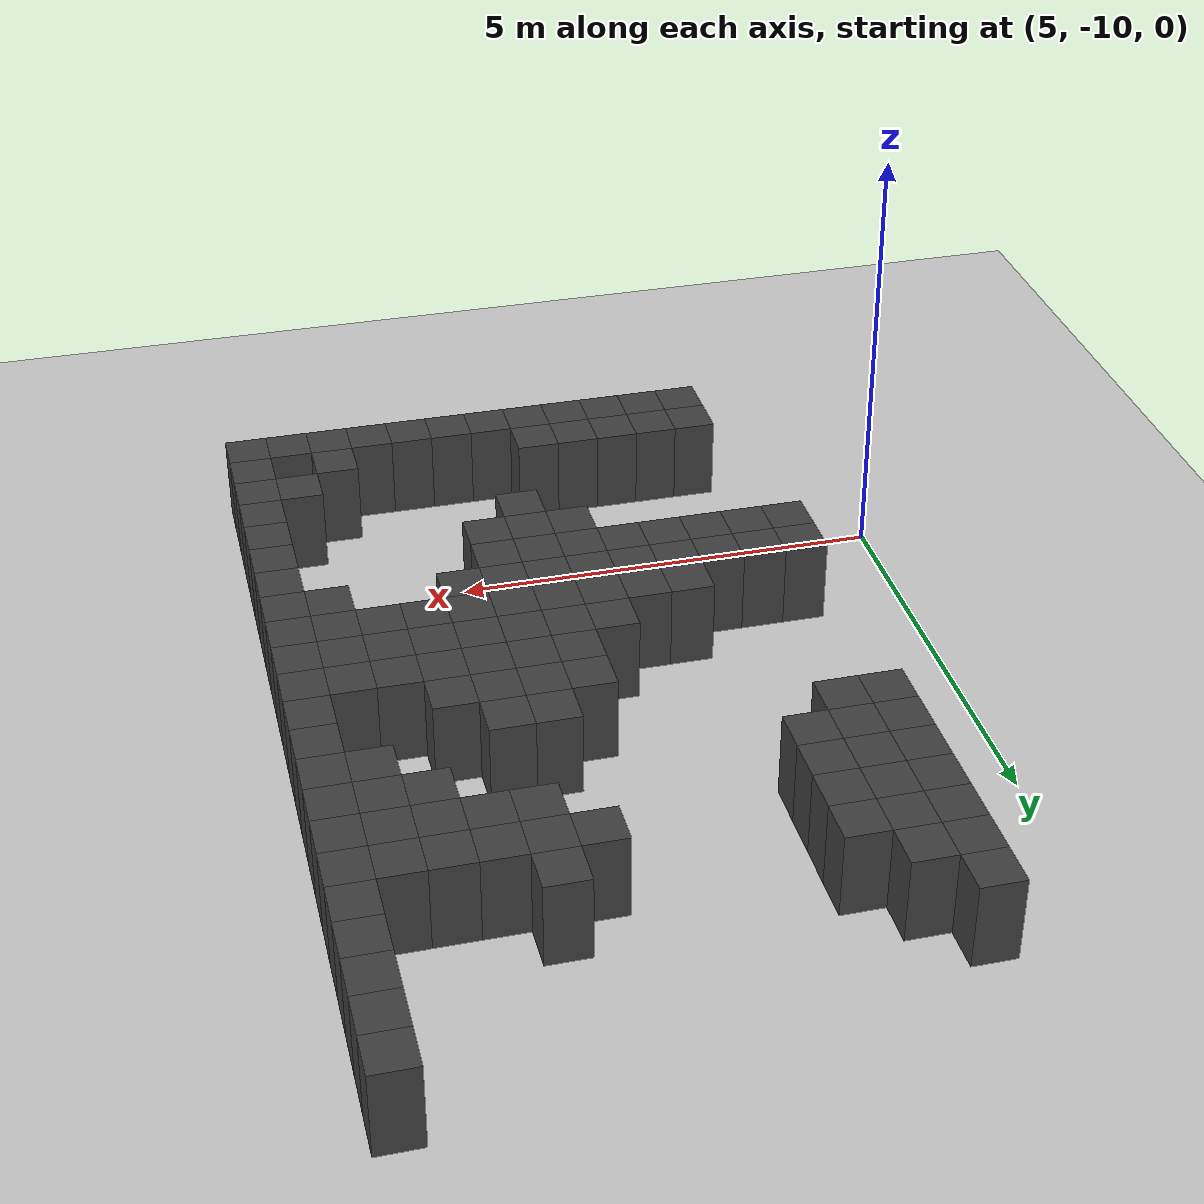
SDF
<sdf version="1.7">
 <world name="map_9381">
  <model name="ground_plane">
   <static>true</static>
   <link name="link">
    <collision name="collision">
     <geometry><plane><normal>0 0 1</normal><size>200 200</size></plane></geometry>
    </collision>
    <visual name="visual">
     <geometry><plane><normal>0 0 1</normal><size>200 200</size></plane></geometry>
     <material><ambient>0.8 0.8 0.8 1</ambient><diffuse>0.8 0.8 0.8 1</diffuse></material>
    </visual>
   </link>
  </model>
  <model name="maze_environment">
   <static>true</static>
   <link name="wall_439">
    <pose>12.250 -1.750 0.500 0 0 0</pose>
    <collision name="col"><geometry><box><size>0.5 0.5 1.0</size></box></geometry></collision>
    <visual name="vis">
     <geometry><box><size>0.5 0.5 1.0</size></box></geometry>
     <material><ambient>0.15 0.15 0.15 1</ambient><diffuse>0.25 0.25 0.25 1</diffuse></material>
    </visual>
   </link>
   <link name="wall_455">
    <pose>12.250 -2.250 0.500 0 0 0</pose>
    <collision name="col"><geometry><box><size>0.5 0.5 1.0</size></box></geometry></collision>
    <visual name="vis">
     <geometry><box><size>0.5 0.5 1.0</size></box></geometry>
     <material><ambient>0.15 0.15 0.15 1</ambient><diffuse>0.25 0.25 0.25 1</diffuse></material>
    </visual>
   </link>
   <link name="wall_470">
    <pose>6.250 -2.750 0.500 0 0 0</pose>
    <collision name="col"><geometry><box><size>0.5 0.5 1.0</size></box></geometry></collision>
    <visual name="vis">
     <geometry><box><size>0.5 0.5 1.0</size></box></geometry>
     <material><ambient>0.15 0.15 0.15 1</ambient><diffuse>0.25 0.25 0.25 1</diffuse></material>
    </visual>
   </link>
   <link name="wall_471">
    <pose>12.250 -2.750 0.500 0 0 0</pose>
    <collision name="col"><geometry><box><size>0.5 0.5 1.0</size></box></geometry></collision>
    <visual name="vis">
     <geometry><box><size>0.5 0.5 1.0</size></box></geometry>
     <material><ambient>0.15 0.15 0.15 1</ambient><diffuse>0.25 0.25 0.25 1</diffuse></material>
    </visual>
   </link>
   <link name="wall_483">
    <pose>6.250 -3.250 0.500 0 0 0</pose>
    <collision name="col"><geometry><box><size>0.5 0.5 1.0</size></box></geometry></collision>
    <visual name="vis">
     <geometry><box><size>0.5 0.5 1.0</size></box></geometry>
     <material><ambient>0.15 0.15 0.15 1</ambient><diffuse>0.25 0.25 0.25 1</diffuse></material>
    </visual>
   </link>
   <link name="wall_484">
    <pose>6.750 -3.250 0.500 0 0 0</pose>
    <collision name="col"><geometry><box><size>0.5 0.5 1.0</size></box></geometry></collision>
    <visual name="vis">
     <geometry><box><size>0.5 0.5 1.0</size></box></geometry>
     <material><ambient>0.15 0.15 0.15 1</ambient><diffuse>0.25 0.25 0.25 1</diffuse></material>
    </visual>
   </link>
   <link name="wall_485">
    <pose>12.250 -3.250 0.500 0 0 0</pose>
    <collision name="col"><geometry><box><size>0.5 0.5 1.0</size></box></geometry></collision>
    <visual name="vis">
     <geometry><box><size>0.5 0.5 1.0</size></box></geometry>
     <material><ambient>0.15 0.15 0.15 1</ambient><diffuse>0.25 0.25 0.25 1</diffuse></material>
    </visual>
   </link>
   <link name="wall_497">
    <pose>6.250 -3.750 0.500 0 0 0</pose>
    <collision name="col"><geometry><box><size>0.5 0.5 1.0</size></box></geometry></collision>
    <visual name="vis">
     <geometry><box><size>0.5 0.5 1.0</size></box></geometry>
     <material><ambient>0.15 0.15 0.15 1</ambient><diffuse>0.25 0.25 0.25 1</diffuse></material>
    </visual>
   </link>
   <link name="wall_498">
    <pose>6.750 -3.750 0.500 0 0 0</pose>
    <collision name="col"><geometry><box><size>0.5 0.5 1.0</size></box></geometry></collision>
    <visual name="vis">
     <geometry><box><size>0.5 0.5 1.0</size></box></geometry>
     <material><ambient>0.15 0.15 0.15 1</ambient><diffuse>0.25 0.25 0.25 1</diffuse></material>
    </visual>
   </link>
   <link name="wall_499">
    <pose>7.250 -3.750 0.500 0 0 0</pose>
    <collision name="col"><geometry><box><size>0.5 0.5 1.0</size></box></geometry></collision>
    <visual name="vis">
     <geometry><box><size>0.5 0.5 1.0</size></box></geometry>
     <material><ambient>0.15 0.15 0.15 1</ambient><diffuse>0.25 0.25 0.25 1</diffuse></material>
    </visual>
   </link>
   <link name="wall_500">
    <pose>10.250 -3.750 0.500 0 0 0</pose>
    <collision name="col"><geometry><box><size>0.5 0.5 1.0</size></box></geometry></collision>
    <visual name="vis">
     <geometry><box><size>0.5 0.5 1.0</size></box></geometry>
     <material><ambient>0.15 0.15 0.15 1</ambient><diffuse>0.25 0.25 0.25 1</diffuse></material>
    </visual>
   </link>
   <link name="wall_501">
    <pose>12.250 -3.750 0.500 0 0 0</pose>
    <collision name="col"><geometry><box><size>0.5 0.5 1.0</size></box></geometry></collision>
    <visual name="vis">
     <geometry><box><size>0.5 0.5 1.0</size></box></geometry>
     <material><ambient>0.15 0.15 0.15 1</ambient><diffuse>0.25 0.25 0.25 1</diffuse></material>
    </visual>
   </link>
   <link name="wall_515">
    <pose>6.250 -4.250 0.500 0 0 0</pose>
    <collision name="col"><geometry><box><size>0.5 0.5 1.0</size></box></geometry></collision>
    <visual name="vis">
     <geometry><box><size>0.5 0.5 1.0</size></box></geometry>
     <material><ambient>0.15 0.15 0.15 1</ambient><diffuse>0.25 0.25 0.25 1</diffuse></material>
    </visual>
   </link>
   <link name="wall_516">
    <pose>6.750 -4.250 0.500 0 0 0</pose>
    <collision name="col"><geometry><box><size>0.5 0.5 1.0</size></box></geometry></collision>
    <visual name="vis">
     <geometry><box><size>0.5 0.5 1.0</size></box></geometry>
     <material><ambient>0.15 0.15 0.15 1</ambient><diffuse>0.25 0.25 0.25 1</diffuse></material>
    </visual>
   </link>
   <link name="wall_517">
    <pose>7.250 -4.250 0.500 0 0 0</pose>
    <collision name="col"><geometry><box><size>0.5 0.5 1.0</size></box></geometry></collision>
    <visual name="vis">
     <geometry><box><size>0.5 0.5 1.0</size></box></geometry>
     <material><ambient>0.15 0.15 0.15 1</ambient><diffuse>0.25 0.25 0.25 1</diffuse></material>
    </visual>
   </link>
   <link name="wall_518">
    <pose>9.750 -4.250 0.500 0 0 0</pose>
    <collision name="col"><geometry><box><size>0.5 0.5 1.0</size></box></geometry></collision>
    <visual name="vis">
     <geometry><box><size>0.5 0.5 1.0</size></box></geometry>
     <material><ambient>0.15 0.15 0.15 1</ambient><diffuse>0.25 0.25 0.25 1</diffuse></material>
    </visual>
   </link>
   <link name="wall_519">
    <pose>10.250 -4.250 0.500 0 0 0</pose>
    <collision name="col"><geometry><box><size>0.5 0.5 1.0</size></box></geometry></collision>
    <visual name="vis">
     <geometry><box><size>0.5 0.5 1.0</size></box></geometry>
     <material><ambient>0.15 0.15 0.15 1</ambient><diffuse>0.25 0.25 0.25 1</diffuse></material>
    </visual>
   </link>
   <link name="wall_520">
    <pose>10.750 -4.250 0.500 0 0 0</pose>
    <collision name="col"><geometry><box><size>0.5 0.5 1.0</size></box></geometry></collision>
    <visual name="vis">
     <geometry><box><size>0.5 0.5 1.0</size></box></geometry>
     <material><ambient>0.15 0.15 0.15 1</ambient><diffuse>0.25 0.25 0.25 1</diffuse></material>
    </visual>
   </link>
   <link name="wall_521">
    <pose>11.250 -4.250 0.500 0 0 0</pose>
    <collision name="col"><geometry><box><size>0.5 0.5 1.0</size></box></geometry></collision>
    <visual name="vis">
     <geometry><box><size>0.5 0.5 1.0</size></box></geometry>
     <material><ambient>0.15 0.15 0.15 1</ambient><diffuse>0.25 0.25 0.25 1</diffuse></material>
    </visual>
   </link>
   <link name="wall_522">
    <pose>11.750 -4.250 0.500 0 0 0</pose>
    <collision name="col"><geometry><box><size>0.5 0.5 1.0</size></box></geometry></collision>
    <visual name="vis">
     <geometry><box><size>0.5 0.5 1.0</size></box></geometry>
     <material><ambient>0.15 0.15 0.15 1</ambient><diffuse>0.25 0.25 0.25 1</diffuse></material>
    </visual>
   </link>
   <link name="wall_523">
    <pose>12.250 -4.250 0.500 0 0 0</pose>
    <collision name="col"><geometry><box><size>0.5 0.5 1.0</size></box></geometry></collision>
    <visual name="vis">
     <geometry><box><size>0.5 0.5 1.0</size></box></geometry>
     <material><ambient>0.15 0.15 0.15 1</ambient><diffuse>0.25 0.25 0.25 1</diffuse></material>
    </visual>
   </link>
   <link name="wall_538">
    <pose>6.250 -4.750 0.500 0 0 0</pose>
    <collision name="col"><geometry><box><size>0.5 0.5 1.0</size></box></geometry></collision>
    <visual name="vis">
     <geometry><box><size>0.5 0.5 1.0</size></box></geometry>
     <material><ambient>0.15 0.15 0.15 1</ambient><diffuse>0.25 0.25 0.25 1</diffuse></material>
    </visual>
   </link>
   <link name="wall_539">
    <pose>6.750 -4.750 0.500 0 0 0</pose>
    <collision name="col"><geometry><box><size>0.5 0.5 1.0</size></box></geometry></collision>
    <visual name="vis">
     <geometry><box><size>0.5 0.5 1.0</size></box></geometry>
     <material><ambient>0.15 0.15 0.15 1</ambient><diffuse>0.25 0.25 0.25 1</diffuse></material>
    </visual>
   </link>
   <link name="wall_540">
    <pose>7.250 -4.750 0.500 0 0 0</pose>
    <collision name="col"><geometry><box><size>0.5 0.5 1.0</size></box></geometry></collision>
    <visual name="vis">
     <geometry><box><size>0.5 0.5 1.0</size></box></geometry>
     <material><ambient>0.15 0.15 0.15 1</ambient><diffuse>0.25 0.25 0.25 1</diffuse></material>
    </visual>
   </link>
   <link name="wall_541">
    <pose>10.250 -4.750 0.500 0 0 0</pose>
    <collision name="col"><geometry><box><size>0.5 0.5 1.0</size></box></geometry></collision>
    <visual name="vis">
     <geometry><box><size>0.5 0.5 1.0</size></box></geometry>
     <material><ambient>0.15 0.15 0.15 1</ambient><diffuse>0.25 0.25 0.25 1</diffuse></material>
    </visual>
   </link>
   <link name="wall_542">
    <pose>10.750 -4.750 0.500 0 0 0</pose>
    <collision name="col"><geometry><box><size>0.5 0.5 1.0</size></box></geometry></collision>
    <visual name="vis">
     <geometry><box><size>0.5 0.5 1.0</size></box></geometry>
     <material><ambient>0.15 0.15 0.15 1</ambient><diffuse>0.25 0.25 0.25 1</diffuse></material>
    </visual>
   </link>
   <link name="wall_543">
    <pose>11.250 -4.750 0.500 0 0 0</pose>
    <collision name="col"><geometry><box><size>0.5 0.5 1.0</size></box></geometry></collision>
    <visual name="vis">
     <geometry><box><size>0.5 0.5 1.0</size></box></geometry>
     <material><ambient>0.15 0.15 0.15 1</ambient><diffuse>0.25 0.25 0.25 1</diffuse></material>
    </visual>
   </link>
   <link name="wall_544">
    <pose>11.750 -4.750 0.500 0 0 0</pose>
    <collision name="col"><geometry><box><size>0.5 0.5 1.0</size></box></geometry></collision>
    <visual name="vis">
     <geometry><box><size>0.5 0.5 1.0</size></box></geometry>
     <material><ambient>0.15 0.15 0.15 1</ambient><diffuse>0.25 0.25 0.25 1</diffuse></material>
    </visual>
   </link>
   <link name="wall_545">
    <pose>12.250 -4.750 0.500 0 0 0</pose>
    <collision name="col"><geometry><box><size>0.5 0.5 1.0</size></box></geometry></collision>
    <visual name="vis">
     <geometry><box><size>0.5 0.5 1.0</size></box></geometry>
     <material><ambient>0.15 0.15 0.15 1</ambient><diffuse>0.25 0.25 0.25 1</diffuse></material>
    </visual>
   </link>
   <link name="wall_559">
    <pose>6.250 -5.250 0.500 0 0 0</pose>
    <collision name="col"><geometry><box><size>0.5 0.5 1.0</size></box></geometry></collision>
    <visual name="vis">
     <geometry><box><size>0.5 0.5 1.0</size></box></geometry>
     <material><ambient>0.15 0.15 0.15 1</ambient><diffuse>0.25 0.25 0.25 1</diffuse></material>
    </visual>
   </link>
   <link name="wall_560">
    <pose>6.750 -5.250 0.500 0 0 0</pose>
    <collision name="col"><geometry><box><size>0.5 0.5 1.0</size></box></geometry></collision>
    <visual name="vis">
     <geometry><box><size>0.5 0.5 1.0</size></box></geometry>
     <material><ambient>0.15 0.15 0.15 1</ambient><diffuse>0.25 0.25 0.25 1</diffuse></material>
    </visual>
   </link>
   <link name="wall_561">
    <pose>7.250 -5.250 0.500 0 0 0</pose>
    <collision name="col"><geometry><box><size>0.5 0.5 1.0</size></box></geometry></collision>
    <visual name="vis">
     <geometry><box><size>0.5 0.5 1.0</size></box></geometry>
     <material><ambient>0.15 0.15 0.15 1</ambient><diffuse>0.25 0.25 0.25 1</diffuse></material>
    </visual>
   </link>
   <link name="wall_562">
    <pose>11.250 -5.250 0.500 0 0 0</pose>
    <collision name="col"><geometry><box><size>0.5 0.5 1.0</size></box></geometry></collision>
    <visual name="vis">
     <geometry><box><size>0.5 0.5 1.0</size></box></geometry>
     <material><ambient>0.15 0.15 0.15 1</ambient><diffuse>0.25 0.25 0.25 1</diffuse></material>
    </visual>
   </link>
   <link name="wall_563">
    <pose>11.750 -5.250 0.500 0 0 0</pose>
    <collision name="col"><geometry><box><size>0.5 0.5 1.0</size></box></geometry></collision>
    <visual name="vis">
     <geometry><box><size>0.5 0.5 1.0</size></box></geometry>
     <material><ambient>0.15 0.15 0.15 1</ambient><diffuse>0.25 0.25 0.25 1</diffuse></material>
    </visual>
   </link>
   <link name="wall_564">
    <pose>12.250 -5.250 0.500 0 0 0</pose>
    <collision name="col"><geometry><box><size>0.5 0.5 1.0</size></box></geometry></collision>
    <visual name="vis">
     <geometry><box><size>0.5 0.5 1.0</size></box></geometry>
     <material><ambient>0.15 0.15 0.15 1</ambient><diffuse>0.25 0.25 0.25 1</diffuse></material>
    </visual>
   </link>
   <link name="wall_577">
    <pose>6.250 -5.750 0.500 0 0 0</pose>
    <collision name="col"><geometry><box><size>0.5 0.5 1.0</size></box></geometry></collision>
    <visual name="vis">
     <geometry><box><size>0.5 0.5 1.0</size></box></geometry>
     <material><ambient>0.15 0.15 0.15 1</ambient><diffuse>0.25 0.25 0.25 1</diffuse></material>
    </visual>
   </link>
   <link name="wall_578">
    <pose>6.750 -5.750 0.500 0 0 0</pose>
    <collision name="col"><geometry><box><size>0.5 0.5 1.0</size></box></geometry></collision>
    <visual name="vis">
     <geometry><box><size>0.5 0.5 1.0</size></box></geometry>
     <material><ambient>0.15 0.15 0.15 1</ambient><diffuse>0.25 0.25 0.25 1</diffuse></material>
    </visual>
   </link>
   <link name="wall_579">
    <pose>11.750 -5.750 0.500 0 0 0</pose>
    <collision name="col"><geometry><box><size>0.5 0.5 1.0</size></box></geometry></collision>
    <visual name="vis">
     <geometry><box><size>0.5 0.5 1.0</size></box></geometry>
     <material><ambient>0.15 0.15 0.15 1</ambient><diffuse>0.25 0.25 0.25 1</diffuse></material>
    </visual>
   </link>
   <link name="wall_580">
    <pose>12.250 -5.750 0.500 0 0 0</pose>
    <collision name="col"><geometry><box><size>0.5 0.5 1.0</size></box></geometry></collision>
    <visual name="vis">
     <geometry><box><size>0.5 0.5 1.0</size></box></geometry>
     <material><ambient>0.15 0.15 0.15 1</ambient><diffuse>0.25 0.25 0.25 1</diffuse></material>
    </visual>
   </link>
   <link name="wall_590">
    <pose>9.750 -6.250 0.500 0 0 0</pose>
    <collision name="col"><geometry><box><size>0.5 0.5 1.0</size></box></geometry></collision>
    <visual name="vis">
     <geometry><box><size>0.5 0.5 1.0</size></box></geometry>
     <material><ambient>0.15 0.15 0.15 1</ambient><diffuse>0.25 0.25 0.25 1</diffuse></material>
    </visual>
   </link>
   <link name="wall_591">
    <pose>10.250 -6.250 0.500 0 0 0</pose>
    <collision name="col"><geometry><box><size>0.5 0.5 1.0</size></box></geometry></collision>
    <visual name="vis">
     <geometry><box><size>0.5 0.5 1.0</size></box></geometry>
     <material><ambient>0.15 0.15 0.15 1</ambient><diffuse>0.25 0.25 0.25 1</diffuse></material>
    </visual>
   </link>
   <link name="wall_592">
    <pose>12.250 -6.250 0.500 0 0 0</pose>
    <collision name="col"><geometry><box><size>0.5 0.5 1.0</size></box></geometry></collision>
    <visual name="vis">
     <geometry><box><size>0.5 0.5 1.0</size></box></geometry>
     <material><ambient>0.15 0.15 0.15 1</ambient><diffuse>0.25 0.25 0.25 1</diffuse></material>
    </visual>
   </link>
   <link name="wall_598">
    <pose>9.250 -6.750 0.500 0 0 0</pose>
    <collision name="col"><geometry><box><size>0.5 0.5 1.0</size></box></geometry></collision>
    <visual name="vis">
     <geometry><box><size>0.5 0.5 1.0</size></box></geometry>
     <material><ambient>0.15 0.15 0.15 1</ambient><diffuse>0.25 0.25 0.25 1</diffuse></material>
    </visual>
   </link>
   <link name="wall_599">
    <pose>9.750 -6.750 0.500 0 0 0</pose>
    <collision name="col"><geometry><box><size>0.5 0.5 1.0</size></box></geometry></collision>
    <visual name="vis">
     <geometry><box><size>0.5 0.5 1.0</size></box></geometry>
     <material><ambient>0.15 0.15 0.15 1</ambient><diffuse>0.25 0.25 0.25 1</diffuse></material>
    </visual>
   </link>
   <link name="wall_600">
    <pose>10.250 -6.750 0.500 0 0 0</pose>
    <collision name="col"><geometry><box><size>0.5 0.5 1.0</size></box></geometry></collision>
    <visual name="vis">
     <geometry><box><size>0.5 0.5 1.0</size></box></geometry>
     <material><ambient>0.15 0.15 0.15 1</ambient><diffuse>0.25 0.25 0.25 1</diffuse></material>
    </visual>
   </link>
   <link name="wall_601">
    <pose>10.750 -6.750 0.500 0 0 0</pose>
    <collision name="col"><geometry><box><size>0.5 0.5 1.0</size></box></geometry></collision>
    <visual name="vis">
     <geometry><box><size>0.5 0.5 1.0</size></box></geometry>
     <material><ambient>0.15 0.15 0.15 1</ambient><diffuse>0.25 0.25 0.25 1</diffuse></material>
    </visual>
   </link>
   <link name="wall_602">
    <pose>12.250 -6.750 0.500 0 0 0</pose>
    <collision name="col"><geometry><box><size>0.5 0.5 1.0</size></box></geometry></collision>
    <visual name="vis">
     <geometry><box><size>0.5 0.5 1.0</size></box></geometry>
     <material><ambient>0.15 0.15 0.15 1</ambient><diffuse>0.25 0.25 0.25 1</diffuse></material>
    </visual>
   </link>
   <link name="wall_608">
    <pose>9.250 -7.250 0.500 0 0 0</pose>
    <collision name="col"><geometry><box><size>0.5 0.5 1.0</size></box></geometry></collision>
    <visual name="vis">
     <geometry><box><size>0.5 0.5 1.0</size></box></geometry>
     <material><ambient>0.15 0.15 0.15 1</ambient><diffuse>0.25 0.25 0.25 1</diffuse></material>
    </visual>
   </link>
   <link name="wall_609">
    <pose>9.750 -7.250 0.500 0 0 0</pose>
    <collision name="col"><geometry><box><size>0.5 0.5 1.0</size></box></geometry></collision>
    <visual name="vis">
     <geometry><box><size>0.5 0.5 1.0</size></box></geometry>
     <material><ambient>0.15 0.15 0.15 1</ambient><diffuse>0.25 0.25 0.25 1</diffuse></material>
    </visual>
   </link>
   <link name="wall_610">
    <pose>10.250 -7.250 0.500 0 0 0</pose>
    <collision name="col"><geometry><box><size>0.5 0.5 1.0</size></box></geometry></collision>
    <visual name="vis">
     <geometry><box><size>0.5 0.5 1.0</size></box></geometry>
     <material><ambient>0.15 0.15 0.15 1</ambient><diffuse>0.25 0.25 0.25 1</diffuse></material>
    </visual>
   </link>
   <link name="wall_611">
    <pose>10.750 -7.250 0.500 0 0 0</pose>
    <collision name="col"><geometry><box><size>0.5 0.5 1.0</size></box></geometry></collision>
    <visual name="vis">
     <geometry><box><size>0.5 0.5 1.0</size></box></geometry>
     <material><ambient>0.15 0.15 0.15 1</ambient><diffuse>0.25 0.25 0.25 1</diffuse></material>
    </visual>
   </link>
   <link name="wall_612">
    <pose>11.250 -7.250 0.500 0 0 0</pose>
    <collision name="col"><geometry><box><size>0.5 0.5 1.0</size></box></geometry></collision>
    <visual name="vis">
     <geometry><box><size>0.5 0.5 1.0</size></box></geometry>
     <material><ambient>0.15 0.15 0.15 1</ambient><diffuse>0.25 0.25 0.25 1</diffuse></material>
    </visual>
   </link>
   <link name="wall_613">
    <pose>11.750 -7.250 0.500 0 0 0</pose>
    <collision name="col"><geometry><box><size>0.5 0.5 1.0</size></box></geometry></collision>
    <visual name="vis">
     <geometry><box><size>0.5 0.5 1.0</size></box></geometry>
     <material><ambient>0.15 0.15 0.15 1</ambient><diffuse>0.25 0.25 0.25 1</diffuse></material>
    </visual>
   </link>
   <link name="wall_614">
    <pose>12.250 -7.250 0.500 0 0 0</pose>
    <collision name="col"><geometry><box><size>0.5 0.5 1.0</size></box></geometry></collision>
    <visual name="vis">
     <geometry><box><size>0.5 0.5 1.0</size></box></geometry>
     <material><ambient>0.15 0.15 0.15 1</ambient><diffuse>0.25 0.25 0.25 1</diffuse></material>
    </visual>
   </link>
   <link name="wall_622">
    <pose>8.750 -7.750 0.500 0 0 0</pose>
    <collision name="col"><geometry><box><size>0.5 0.5 1.0</size></box></geometry></collision>
    <visual name="vis">
     <geometry><box><size>0.5 0.5 1.0</size></box></geometry>
     <material><ambient>0.15 0.15 0.15 1</ambient><diffuse>0.25 0.25 0.25 1</diffuse></material>
    </visual>
   </link>
   <link name="wall_623">
    <pose>9.250 -7.750 0.500 0 0 0</pose>
    <collision name="col"><geometry><box><size>0.5 0.5 1.0</size></box></geometry></collision>
    <visual name="vis">
     <geometry><box><size>0.5 0.5 1.0</size></box></geometry>
     <material><ambient>0.15 0.15 0.15 1</ambient><diffuse>0.25 0.25 0.25 1</diffuse></material>
    </visual>
   </link>
   <link name="wall_624">
    <pose>9.750 -7.750 0.500 0 0 0</pose>
    <collision name="col"><geometry><box><size>0.5 0.5 1.0</size></box></geometry></collision>
    <visual name="vis">
     <geometry><box><size>0.5 0.5 1.0</size></box></geometry>
     <material><ambient>0.15 0.15 0.15 1</ambient><diffuse>0.25 0.25 0.25 1</diffuse></material>
    </visual>
   </link>
   <link name="wall_625">
    <pose>10.250 -7.750 0.500 0 0 0</pose>
    <collision name="col"><geometry><box><size>0.5 0.5 1.0</size></box></geometry></collision>
    <visual name="vis">
     <geometry><box><size>0.5 0.5 1.0</size></box></geometry>
     <material><ambient>0.15 0.15 0.15 1</ambient><diffuse>0.25 0.25 0.25 1</diffuse></material>
    </visual>
   </link>
   <link name="wall_626">
    <pose>10.750 -7.750 0.500 0 0 0</pose>
    <collision name="col"><geometry><box><size>0.5 0.5 1.0</size></box></geometry></collision>
    <visual name="vis">
     <geometry><box><size>0.5 0.5 1.0</size></box></geometry>
     <material><ambient>0.15 0.15 0.15 1</ambient><diffuse>0.25 0.25 0.25 1</diffuse></material>
    </visual>
   </link>
   <link name="wall_627">
    <pose>11.250 -7.750 0.500 0 0 0</pose>
    <collision name="col"><geometry><box><size>0.5 0.5 1.0</size></box></geometry></collision>
    <visual name="vis">
     <geometry><box><size>0.5 0.5 1.0</size></box></geometry>
     <material><ambient>0.15 0.15 0.15 1</ambient><diffuse>0.25 0.25 0.25 1</diffuse></material>
    </visual>
   </link>
   <link name="wall_628">
    <pose>11.750 -7.750 0.500 0 0 0</pose>
    <collision name="col"><geometry><box><size>0.5 0.5 1.0</size></box></geometry></collision>
    <visual name="vis">
     <geometry><box><size>0.5 0.5 1.0</size></box></geometry>
     <material><ambient>0.15 0.15 0.15 1</ambient><diffuse>0.25 0.25 0.25 1</diffuse></material>
    </visual>
   </link>
   <link name="wall_629">
    <pose>12.250 -7.750 0.500 0 0 0</pose>
    <collision name="col"><geometry><box><size>0.5 0.5 1.0</size></box></geometry></collision>
    <visual name="vis">
     <geometry><box><size>0.5 0.5 1.0</size></box></geometry>
     <material><ambient>0.15 0.15 0.15 1</ambient><diffuse>0.25 0.25 0.25 1</diffuse></material>
    </visual>
   </link>
   <link name="wall_641">
    <pose>7.750 -8.250 0.500 0 0 0</pose>
    <collision name="col"><geometry><box><size>0.5 0.5 1.0</size></box></geometry></collision>
    <visual name="vis">
     <geometry><box><size>0.5 0.5 1.0</size></box></geometry>
     <material><ambient>0.15 0.15 0.15 1</ambient><diffuse>0.25 0.25 0.25 1</diffuse></material>
    </visual>
   </link>
   <link name="wall_642">
    <pose>8.250 -8.250 0.500 0 0 0</pose>
    <collision name="col"><geometry><box><size>0.5 0.5 1.0</size></box></geometry></collision>
    <visual name="vis">
     <geometry><box><size>0.5 0.5 1.0</size></box></geometry>
     <material><ambient>0.15 0.15 0.15 1</ambient><diffuse>0.25 0.25 0.25 1</diffuse></material>
    </visual>
   </link>
   <link name="wall_643">
    <pose>8.750 -8.250 0.500 0 0 0</pose>
    <collision name="col"><geometry><box><size>0.5 0.5 1.0</size></box></geometry></collision>
    <visual name="vis">
     <geometry><box><size>0.5 0.5 1.0</size></box></geometry>
     <material><ambient>0.15 0.15 0.15 1</ambient><diffuse>0.25 0.25 0.25 1</diffuse></material>
    </visual>
   </link>
   <link name="wall_644">
    <pose>9.250 -8.250 0.500 0 0 0</pose>
    <collision name="col"><geometry><box><size>0.5 0.5 1.0</size></box></geometry></collision>
    <visual name="vis">
     <geometry><box><size>0.5 0.5 1.0</size></box></geometry>
     <material><ambient>0.15 0.15 0.15 1</ambient><diffuse>0.25 0.25 0.25 1</diffuse></material>
    </visual>
   </link>
   <link name="wall_645">
    <pose>9.750 -8.250 0.500 0 0 0</pose>
    <collision name="col"><geometry><box><size>0.5 0.5 1.0</size></box></geometry></collision>
    <visual name="vis">
     <geometry><box><size>0.5 0.5 1.0</size></box></geometry>
     <material><ambient>0.15 0.15 0.15 1</ambient><diffuse>0.25 0.25 0.25 1</diffuse></material>
    </visual>
   </link>
   <link name="wall_646">
    <pose>10.250 -8.250 0.500 0 0 0</pose>
    <collision name="col"><geometry><box><size>0.5 0.5 1.0</size></box></geometry></collision>
    <visual name="vis">
     <geometry><box><size>0.5 0.5 1.0</size></box></geometry>
     <material><ambient>0.15 0.15 0.15 1</ambient><diffuse>0.25 0.25 0.25 1</diffuse></material>
    </visual>
   </link>
   <link name="wall_647">
    <pose>10.750 -8.250 0.500 0 0 0</pose>
    <collision name="col"><geometry><box><size>0.5 0.5 1.0</size></box></geometry></collision>
    <visual name="vis">
     <geometry><box><size>0.5 0.5 1.0</size></box></geometry>
     <material><ambient>0.15 0.15 0.15 1</ambient><diffuse>0.25 0.25 0.25 1</diffuse></material>
    </visual>
   </link>
   <link name="wall_648">
    <pose>11.250 -8.250 0.500 0 0 0</pose>
    <collision name="col"><geometry><box><size>0.5 0.5 1.0</size></box></geometry></collision>
    <visual name="vis">
     <geometry><box><size>0.5 0.5 1.0</size></box></geometry>
     <material><ambient>0.15 0.15 0.15 1</ambient><diffuse>0.25 0.25 0.25 1</diffuse></material>
    </visual>
   </link>
   <link name="wall_649">
    <pose>11.750 -8.250 0.500 0 0 0</pose>
    <collision name="col"><geometry><box><size>0.5 0.5 1.0</size></box></geometry></collision>
    <visual name="vis">
     <geometry><box><size>0.5 0.5 1.0</size></box></geometry>
     <material><ambient>0.15 0.15 0.15 1</ambient><diffuse>0.25 0.25 0.25 1</diffuse></material>
    </visual>
   </link>
   <link name="wall_650">
    <pose>12.250 -8.250 0.500 0 0 0</pose>
    <collision name="col"><geometry><box><size>0.5 0.5 1.0</size></box></geometry></collision>
    <visual name="vis">
     <geometry><box><size>0.5 0.5 1.0</size></box></geometry>
     <material><ambient>0.15 0.15 0.15 1</ambient><diffuse>0.25 0.25 0.25 1</diffuse></material>
    </visual>
   </link>
   <link name="wall_664">
    <pose>6.250 -8.750 0.500 0 0 0</pose>
    <collision name="col"><geometry><box><size>0.5 0.5 1.0</size></box></geometry></collision>
    <visual name="vis">
     <geometry><box><size>0.5 0.5 1.0</size></box></geometry>
     <material><ambient>0.15 0.15 0.15 1</ambient><diffuse>0.25 0.25 0.25 1</diffuse></material>
    </visual>
   </link>
   <link name="wall_665">
    <pose>6.750 -8.750 0.500 0 0 0</pose>
    <collision name="col"><geometry><box><size>0.5 0.5 1.0</size></box></geometry></collision>
    <visual name="vis">
     <geometry><box><size>0.5 0.5 1.0</size></box></geometry>
     <material><ambient>0.15 0.15 0.15 1</ambient><diffuse>0.25 0.25 0.25 1</diffuse></material>
    </visual>
   </link>
   <link name="wall_666">
    <pose>7.250 -8.750 0.500 0 0 0</pose>
    <collision name="col"><geometry><box><size>0.5 0.5 1.0</size></box></geometry></collision>
    <visual name="vis">
     <geometry><box><size>0.5 0.5 1.0</size></box></geometry>
     <material><ambient>0.15 0.15 0.15 1</ambient><diffuse>0.25 0.25 0.25 1</diffuse></material>
    </visual>
   </link>
   <link name="wall_667">
    <pose>7.750 -8.750 0.500 0 0 0</pose>
    <collision name="col"><geometry><box><size>0.5 0.5 1.0</size></box></geometry></collision>
    <visual name="vis">
     <geometry><box><size>0.5 0.5 1.0</size></box></geometry>
     <material><ambient>0.15 0.15 0.15 1</ambient><diffuse>0.25 0.25 0.25 1</diffuse></material>
    </visual>
   </link>
   <link name="wall_668">
    <pose>8.250 -8.750 0.500 0 0 0</pose>
    <collision name="col"><geometry><box><size>0.5 0.5 1.0</size></box></geometry></collision>
    <visual name="vis">
     <geometry><box><size>0.5 0.5 1.0</size></box></geometry>
     <material><ambient>0.15 0.15 0.15 1</ambient><diffuse>0.25 0.25 0.25 1</diffuse></material>
    </visual>
   </link>
   <link name="wall_669">
    <pose>8.750 -8.750 0.500 0 0 0</pose>
    <collision name="col"><geometry><box><size>0.5 0.5 1.0</size></box></geometry></collision>
    <visual name="vis">
     <geometry><box><size>0.5 0.5 1.0</size></box></geometry>
     <material><ambient>0.15 0.15 0.15 1</ambient><diffuse>0.25 0.25 0.25 1</diffuse></material>
    </visual>
   </link>
   <link name="wall_670">
    <pose>9.250 -8.750 0.500 0 0 0</pose>
    <collision name="col"><geometry><box><size>0.5 0.5 1.0</size></box></geometry></collision>
    <visual name="vis">
     <geometry><box><size>0.5 0.5 1.0</size></box></geometry>
     <material><ambient>0.15 0.15 0.15 1</ambient><diffuse>0.25 0.25 0.25 1</diffuse></material>
    </visual>
   </link>
   <link name="wall_671">
    <pose>9.750 -8.750 0.500 0 0 0</pose>
    <collision name="col"><geometry><box><size>0.5 0.5 1.0</size></box></geometry></collision>
    <visual name="vis">
     <geometry><box><size>0.5 0.5 1.0</size></box></geometry>
     <material><ambient>0.15 0.15 0.15 1</ambient><diffuse>0.25 0.25 0.25 1</diffuse></material>
    </visual>
   </link>
   <link name="wall_672">
    <pose>10.250 -8.750 0.500 0 0 0</pose>
    <collision name="col"><geometry><box><size>0.5 0.5 1.0</size></box></geometry></collision>
    <visual name="vis">
     <geometry><box><size>0.5 0.5 1.0</size></box></geometry>
     <material><ambient>0.15 0.15 0.15 1</ambient><diffuse>0.25 0.25 0.25 1</diffuse></material>
    </visual>
   </link>
   <link name="wall_673">
    <pose>11.750 -8.750 0.500 0 0 0</pose>
    <collision name="col"><geometry><box><size>0.5 0.5 1.0</size></box></geometry></collision>
    <visual name="vis">
     <geometry><box><size>0.5 0.5 1.0</size></box></geometry>
     <material><ambient>0.15 0.15 0.15 1</ambient><diffuse>0.25 0.25 0.25 1</diffuse></material>
    </visual>
   </link>
   <link name="wall_674">
    <pose>12.250 -8.750 0.500 0 0 0</pose>
    <collision name="col"><geometry><box><size>0.5 0.5 1.0</size></box></geometry></collision>
    <visual name="vis">
     <geometry><box><size>0.5 0.5 1.0</size></box></geometry>
     <material><ambient>0.15 0.15 0.15 1</ambient><diffuse>0.25 0.25 0.25 1</diffuse></material>
    </visual>
   </link>
   <link name="wall_689">
    <pose>6.250 -9.250 0.500 0 0 0</pose>
    <collision name="col"><geometry><box><size>0.5 0.5 1.0</size></box></geometry></collision>
    <visual name="vis">
     <geometry><box><size>0.5 0.5 1.0</size></box></geometry>
     <material><ambient>0.15 0.15 0.15 1</ambient><diffuse>0.25 0.25 0.25 1</diffuse></material>
    </visual>
   </link>
   <link name="wall_690">
    <pose>6.750 -9.250 0.500 0 0 0</pose>
    <collision name="col"><geometry><box><size>0.5 0.5 1.0</size></box></geometry></collision>
    <visual name="vis">
     <geometry><box><size>0.5 0.5 1.0</size></box></geometry>
     <material><ambient>0.15 0.15 0.15 1</ambient><diffuse>0.25 0.25 0.25 1</diffuse></material>
    </visual>
   </link>
   <link name="wall_691">
    <pose>7.250 -9.250 0.500 0 0 0</pose>
    <collision name="col"><geometry><box><size>0.5 0.5 1.0</size></box></geometry></collision>
    <visual name="vis">
     <geometry><box><size>0.5 0.5 1.0</size></box></geometry>
     <material><ambient>0.15 0.15 0.15 1</ambient><diffuse>0.25 0.25 0.25 1</diffuse></material>
    </visual>
   </link>
   <link name="wall_692">
    <pose>7.750 -9.250 0.500 0 0 0</pose>
    <collision name="col"><geometry><box><size>0.5 0.5 1.0</size></box></geometry></collision>
    <visual name="vis">
     <geometry><box><size>0.5 0.5 1.0</size></box></geometry>
     <material><ambient>0.15 0.15 0.15 1</ambient><diffuse>0.25 0.25 0.25 1</diffuse></material>
    </visual>
   </link>
   <link name="wall_693">
    <pose>8.250 -9.250 0.500 0 0 0</pose>
    <collision name="col"><geometry><box><size>0.5 0.5 1.0</size></box></geometry></collision>
    <visual name="vis">
     <geometry><box><size>0.5 0.5 1.0</size></box></geometry>
     <material><ambient>0.15 0.15 0.15 1</ambient><diffuse>0.25 0.25 0.25 1</diffuse></material>
    </visual>
   </link>
   <link name="wall_694">
    <pose>8.750 -9.250 0.500 0 0 0</pose>
    <collision name="col"><geometry><box><size>0.5 0.5 1.0</size></box></geometry></collision>
    <visual name="vis">
     <geometry><box><size>0.5 0.5 1.0</size></box></geometry>
     <material><ambient>0.15 0.15 0.15 1</ambient><diffuse>0.25 0.25 0.25 1</diffuse></material>
    </visual>
   </link>
   <link name="wall_695">
    <pose>9.250 -9.250 0.500 0 0 0</pose>
    <collision name="col"><geometry><box><size>0.5 0.5 1.0</size></box></geometry></collision>
    <visual name="vis">
     <geometry><box><size>0.5 0.5 1.0</size></box></geometry>
     <material><ambient>0.15 0.15 0.15 1</ambient><diffuse>0.25 0.25 0.25 1</diffuse></material>
    </visual>
   </link>
   <link name="wall_696">
    <pose>9.750 -9.250 0.500 0 0 0</pose>
    <collision name="col"><geometry><box><size>0.5 0.5 1.0</size></box></geometry></collision>
    <visual name="vis">
     <geometry><box><size>0.5 0.5 1.0</size></box></geometry>
     <material><ambient>0.15 0.15 0.15 1</ambient><diffuse>0.25 0.25 0.25 1</diffuse></material>
    </visual>
   </link>
   <link name="wall_697">
    <pose>12.250 -9.250 0.500 0 0 0</pose>
    <collision name="col"><geometry><box><size>0.5 0.5 1.0</size></box></geometry></collision>
    <visual name="vis">
     <geometry><box><size>0.5 0.5 1.0</size></box></geometry>
     <material><ambient>0.15 0.15 0.15 1</ambient><diffuse>0.25 0.25 0.25 1</diffuse></material>
    </visual>
   </link>
   <link name="wall_715">
    <pose>8.750 -9.750 0.500 0 0 0</pose>
    <collision name="col"><geometry><box><size>0.5 0.5 1.0</size></box></geometry></collision>
    <visual name="vis">
     <geometry><box><size>0.5 0.5 1.0</size></box></geometry>
     <material><ambient>0.15 0.15 0.15 1</ambient><diffuse>0.25 0.25 0.25 1</diffuse></material>
    </visual>
   </link>
   <link name="wall_716">
    <pose>9.250 -9.750 0.500 0 0 0</pose>
    <collision name="col"><geometry><box><size>0.5 0.5 1.0</size></box></geometry></collision>
    <visual name="vis">
     <geometry><box><size>0.5 0.5 1.0</size></box></geometry>
     <material><ambient>0.15 0.15 0.15 1</ambient><diffuse>0.25 0.25 0.25 1</diffuse></material>
    </visual>
   </link>
   <link name="wall_717">
    <pose>9.750 -9.750 0.500 0 0 0</pose>
    <collision name="col"><geometry><box><size>0.5 0.5 1.0</size></box></geometry></collision>
    <visual name="vis">
     <geometry><box><size>0.5 0.5 1.0</size></box></geometry>
     <material><ambient>0.15 0.15 0.15 1</ambient><diffuse>0.25 0.25 0.25 1</diffuse></material>
    </visual>
   </link>
   <link name="wall_718">
    <pose>12.250 -9.750 0.500 0 0 0</pose>
    <collision name="col"><geometry><box><size>0.5 0.5 1.0</size></box></geometry></collision>
    <visual name="vis">
     <geometry><box><size>0.5 0.5 1.0</size></box></geometry>
     <material><ambient>0.15 0.15 0.15 1</ambient><diffuse>0.25 0.25 0.25 1</diffuse></material>
    </visual>
   </link>
   <link name="wall_737">
    <pose>9.250 -10.250 0.500 0 0 0</pose>
    <collision name="col"><geometry><box><size>0.5 0.5 1.0</size></box></geometry></collision>
    <visual name="vis">
     <geometry><box><size>0.5 0.5 1.0</size></box></geometry>
     <material><ambient>0.15 0.15 0.15 1</ambient><diffuse>0.25 0.25 0.25 1</diffuse></material>
    </visual>
   </link>
   <link name="wall_738">
    <pose>12.250 -10.250 0.500 0 0 0</pose>
    <collision name="col"><geometry><box><size>0.5 0.5 1.0</size></box></geometry></collision>
    <visual name="vis">
     <geometry><box><size>0.5 0.5 1.0</size></box></geometry>
     <material><ambient>0.15 0.15 0.15 1</ambient><diffuse>0.25 0.25 0.25 1</diffuse></material>
    </visual>
   </link>
   <link name="wall_752">
    <pose>12.250 -10.750 0.500 0 0 0</pose>
    <collision name="col"><geometry><box><size>0.5 0.5 1.0</size></box></geometry></collision>
    <visual name="vis">
     <geometry><box><size>0.5 0.5 1.0</size></box></geometry>
     <material><ambient>0.15 0.15 0.15 1</ambient><diffuse>0.25 0.25 0.25 1</diffuse></material>
    </visual>
   </link>
   <link name="wall_765">
    <pose>11.750 -11.250 0.500 0 0 0</pose>
    <collision name="col"><geometry><box><size>0.5 0.5 1.0</size></box></geometry></collision>
    <visual name="vis">
     <geometry><box><size>0.5 0.5 1.0</size></box></geometry>
     <material><ambient>0.15 0.15 0.15 1</ambient><diffuse>0.25 0.25 0.25 1</diffuse></material>
    </visual>
   </link>
   <link name="wall_766">
    <pose>12.250 -11.250 0.500 0 0 0</pose>
    <collision name="col"><geometry><box><size>0.5 0.5 1.0</size></box></geometry></collision>
    <visual name="vis">
     <geometry><box><size>0.5 0.5 1.0</size></box></geometry>
     <material><ambient>0.15 0.15 0.15 1</ambient><diffuse>0.25 0.25 0.25 1</diffuse></material>
    </visual>
   </link>
   <link name="wall_784">
    <pose>6.750 -11.750 0.500 0 0 0</pose>
    <collision name="col"><geometry><box><size>0.5 0.5 1.0</size></box></geometry></collision>
    <visual name="vis">
     <geometry><box><size>0.5 0.5 1.0</size></box></geometry>
     <material><ambient>0.15 0.15 0.15 1</ambient><diffuse>0.25 0.25 0.25 1</diffuse></material>
    </visual>
   </link>
   <link name="wall_785">
    <pose>7.250 -11.750 0.500 0 0 0</pose>
    <collision name="col"><geometry><box><size>0.5 0.5 1.0</size></box></geometry></collision>
    <visual name="vis">
     <geometry><box><size>0.5 0.5 1.0</size></box></geometry>
     <material><ambient>0.15 0.15 0.15 1</ambient><diffuse>0.25 0.25 0.25 1</diffuse></material>
    </visual>
   </link>
   <link name="wall_786">
    <pose>7.750 -11.750 0.500 0 0 0</pose>
    <collision name="col"><geometry><box><size>0.5 0.5 1.0</size></box></geometry></collision>
    <visual name="vis">
     <geometry><box><size>0.5 0.5 1.0</size></box></geometry>
     <material><ambient>0.15 0.15 0.15 1</ambient><diffuse>0.25 0.25 0.25 1</diffuse></material>
    </visual>
   </link>
   <link name="wall_787">
    <pose>8.250 -11.750 0.500 0 0 0</pose>
    <collision name="col"><geometry><box><size>0.5 0.5 1.0</size></box></geometry></collision>
    <visual name="vis">
     <geometry><box><size>0.5 0.5 1.0</size></box></geometry>
     <material><ambient>0.15 0.15 0.15 1</ambient><diffuse>0.25 0.25 0.25 1</diffuse></material>
    </visual>
   </link>
   <link name="wall_788">
    <pose>8.750 -11.750 0.500 0 0 0</pose>
    <collision name="col"><geometry><box><size>0.5 0.5 1.0</size></box></geometry></collision>
    <visual name="vis">
     <geometry><box><size>0.5 0.5 1.0</size></box></geometry>
     <material><ambient>0.15 0.15 0.15 1</ambient><diffuse>0.25 0.25 0.25 1</diffuse></material>
    </visual>
   </link>
   <link name="wall_789">
    <pose>11.250 -11.750 0.500 0 0 0</pose>
    <collision name="col"><geometry><box><size>0.5 0.5 1.0</size></box></geometry></collision>
    <visual name="vis">
     <geometry><box><size>0.5 0.5 1.0</size></box></geometry>
     <material><ambient>0.15 0.15 0.15 1</ambient><diffuse>0.25 0.25 0.25 1</diffuse></material>
    </visual>
   </link>
   <link name="wall_790">
    <pose>12.250 -11.750 0.500 0 0 0</pose>
    <collision name="col"><geometry><box><size>0.5 0.5 1.0</size></box></geometry></collision>
    <visual name="vis">
     <geometry><box><size>0.5 0.5 1.0</size></box></geometry>
     <material><ambient>0.15 0.15 0.15 1</ambient><diffuse>0.25 0.25 0.25 1</diffuse></material>
    </visual>
   </link>
   <link name="wall_829">
    <pose>6.750 -12.250 0.500 0 0 0</pose>
    <collision name="col"><geometry><box><size>0.5 0.5 1.0</size></box></geometry></collision>
    <visual name="vis">
     <geometry><box><size>0.5 0.5 1.0</size></box></geometry>
     <material><ambient>0.15 0.15 0.15 1</ambient><diffuse>0.25 0.25 0.25 1</diffuse></material>
    </visual>
   </link>
   <link name="wall_830">
    <pose>7.250 -12.250 0.500 0 0 0</pose>
    <collision name="col"><geometry><box><size>0.5 0.5 1.0</size></box></geometry></collision>
    <visual name="vis">
     <geometry><box><size>0.5 0.5 1.0</size></box></geometry>
     <material><ambient>0.15 0.15 0.15 1</ambient><diffuse>0.25 0.25 0.25 1</diffuse></material>
    </visual>
   </link>
   <link name="wall_831">
    <pose>7.750 -12.250 0.500 0 0 0</pose>
    <collision name="col"><geometry><box><size>0.5 0.5 1.0</size></box></geometry></collision>
    <visual name="vis">
     <geometry><box><size>0.5 0.5 1.0</size></box></geometry>
     <material><ambient>0.15 0.15 0.15 1</ambient><diffuse>0.25 0.25 0.25 1</diffuse></material>
    </visual>
   </link>
   <link name="wall_832">
    <pose>8.250 -12.250 0.500 0 0 0</pose>
    <collision name="col"><geometry><box><size>0.5 0.5 1.0</size></box></geometry></collision>
    <visual name="vis">
     <geometry><box><size>0.5 0.5 1.0</size></box></geometry>
     <material><ambient>0.15 0.15 0.15 1</ambient><diffuse>0.25 0.25 0.25 1</diffuse></material>
    </visual>
   </link>
   <link name="wall_833">
    <pose>8.750 -12.250 0.500 0 0 0</pose>
    <collision name="col"><geometry><box><size>0.5 0.5 1.0</size></box></geometry></collision>
    <visual name="vis">
     <geometry><box><size>0.5 0.5 1.0</size></box></geometry>
     <material><ambient>0.15 0.15 0.15 1</ambient><diffuse>0.25 0.25 0.25 1</diffuse></material>
    </visual>
   </link>
   <link name="wall_834">
    <pose>9.250 -12.250 0.500 0 0 0</pose>
    <collision name="col"><geometry><box><size>0.5 0.5 1.0</size></box></geometry></collision>
    <visual name="vis">
     <geometry><box><size>0.5 0.5 1.0</size></box></geometry>
     <material><ambient>0.15 0.15 0.15 1</ambient><diffuse>0.25 0.25 0.25 1</diffuse></material>
    </visual>
   </link>
   <link name="wall_835">
    <pose>9.750 -12.250 0.500 0 0 0</pose>
    <collision name="col"><geometry><box><size>0.5 0.5 1.0</size></box></geometry></collision>
    <visual name="vis">
     <geometry><box><size>0.5 0.5 1.0</size></box></geometry>
     <material><ambient>0.15 0.15 0.15 1</ambient><diffuse>0.25 0.25 0.25 1</diffuse></material>
    </visual>
   </link>
   <link name="wall_836">
    <pose>10.250 -12.250 0.500 0 0 0</pose>
    <collision name="col"><geometry><box><size>0.5 0.5 1.0</size></box></geometry></collision>
    <visual name="vis">
     <geometry><box><size>0.5 0.5 1.0</size></box></geometry>
     <material><ambient>0.15 0.15 0.15 1</ambient><diffuse>0.25 0.25 0.25 1</diffuse></material>
    </visual>
   </link>
   <link name="wall_837">
    <pose>10.750 -12.250 0.500 0 0 0</pose>
    <collision name="col"><geometry><box><size>0.5 0.5 1.0</size></box></geometry></collision>
    <visual name="vis">
     <geometry><box><size>0.5 0.5 1.0</size></box></geometry>
     <material><ambient>0.15 0.15 0.15 1</ambient><diffuse>0.25 0.25 0.25 1</diffuse></material>
    </visual>
   </link>
   <link name="wall_838">
    <pose>11.250 -12.250 0.500 0 0 0</pose>
    <collision name="col"><geometry><box><size>0.5 0.5 1.0</size></box></geometry></collision>
    <visual name="vis">
     <geometry><box><size>0.5 0.5 1.0</size></box></geometry>
     <material><ambient>0.15 0.15 0.15 1</ambient><diffuse>0.25 0.25 0.25 1</diffuse></material>
    </visual>
   </link>
   <link name="wall_839">
    <pose>11.750 -12.250 0.500 0 0 0</pose>
    <collision name="col"><geometry><box><size>0.5 0.5 1.0</size></box></geometry></collision>
    <visual name="vis">
     <geometry><box><size>0.5 0.5 1.0</size></box></geometry>
     <material><ambient>0.15 0.15 0.15 1</ambient><diffuse>0.25 0.25 0.25 1</diffuse></material>
    </visual>
   </link>
   <link name="wall_840">
    <pose>12.250 -12.250 0.500 0 0 0</pose>
    <collision name="col"><geometry><box><size>0.5 0.5 1.0</size></box></geometry></collision>
    <visual name="vis">
     <geometry><box><size>0.5 0.5 1.0</size></box></geometry>
     <material><ambient>0.15 0.15 0.15 1</ambient><diffuse>0.25 0.25 0.25 1</diffuse></material>
    </visual>
   </link>
   <link name="goal_zone">
    <pose>11.750 -11.750 0.005 0 0 0</pose>
    <visual name="vis">
     <geometry><box><size>0.45 0.45 0.01</size></box></geometry>
     <material>
      <ambient>1.0 0.0 0.0 1</ambient>
      <diffuse>1.0 0.0 0.0 1</diffuse>
      <emissive>0.60 0.00 0.00 1</emissive>
     </material>
    </visual>
   </link>
  </model>
 </world>
</sdf>
